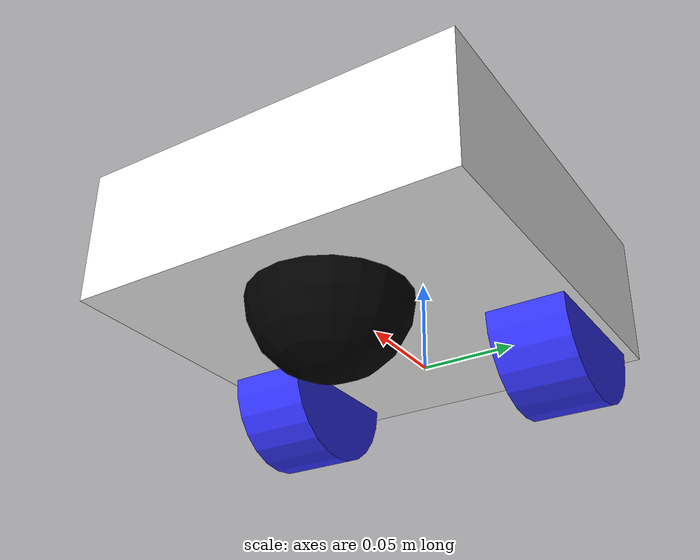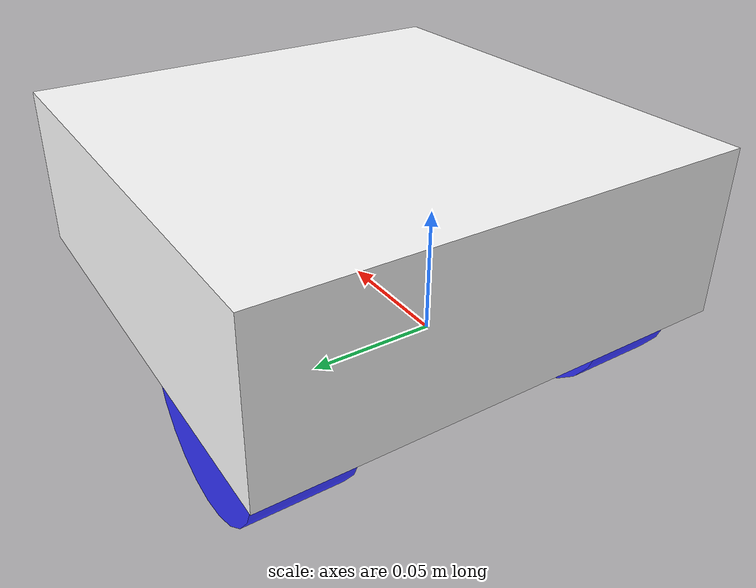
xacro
<?xml version="1.0"?>
<robot xmlns:xacro="http://www.ros.org/wiki/xacro">
    <xacro:include filename="inertial_macros.xacro" />
    <material name="white">
        <color rgba="1 1 1 1"/>
    </material>

    <material name="orange">
        <color rgba="1 0.3 0.1 1"/>
    </material>

    <material name="blue">
        <color rgba="0.2 0.2 1 1"/>
    </material>

    <material name="black">
        <color rgba="0 0 0 1"/>
    </material>
    <material name="red">
        <color rgba="1 0 0 1"/>
    </material>
    <!-- base_link definition -->
    <link name="base_link">
        <!-- This is an empty link; you can add visuals or collision properties here if needed -->
    </link>

    <!-- Chassis Link Definition -->
    <link name="chassis">
        <visual>
            <origin xyz="0.1 0 0.035" />
            <geometry>
                <box size="0.2 0.2 0.07"/>
            </geometry>
            <material name="white"/>
        </visual>
        <collision>
            <origin xyz="0.2 0 0.035" />
            <geometry>
                <box size="0.2 0.2 0.07"/>
            </geometry>
        </collision>
        <xacro:inertial_box mass="0.5" x="0.2" y="0.2" z="0.07">
            <origin xyz="0.15 0 0.075" rpy="0 0 0"/>
        </xacro:inertial_box>
    </link>
    <gazebo reference="chassis">
        <material>Gazebo/White</material>
    </gazebo>

    <!-- Fixed joint between base_link and chassis -->
    <joint name="chassis_joint" type="fixed">
        <parent link="base_link"/>
        <child link="chassis"/>
        <origin xyz="-0.05 0 0"/>
    </joint>

    <!-- left wheel-->>
    <!-- LEFT WHEEL -->

    <joint name="left_wheel_joint" type="continuous">
        <parent link="base_link"/>
        <child link="left_wheel"/>
        <origin xyz="0 0.075 0" rpy="-${pi/2} 0 0"/>
        <axis xyz="0 0 1"/>
    </joint>

    <link name="left_wheel">
        <visual>
            <geometry>
                <cylinder length="0.04" radius="0.04" />
            </geometry>
            <material name="blue"/>
        </visual>
        <collision>
            <geometry>
                <cylinder length="0.04" radius="0.04" />
            </geometry>
        </collision>
        <xacro:inertial_cylinder mass="0.1" length="0.04" radius="0.04">
            <origin xyz="0 0 0" rpy="0 0 0"/>
        </xacro:inertial_cylinder>
    </link>
    <gazebo reference="left_wheel">
        <material>Gazebo/Blue</material>
    </gazebo>
    <!-- right wheel-->
    <!-- RIGHT WHEEL -->

    <joint name="right_wheel_joint" type="continuous">
        <parent link="base_link"/>
        <child link="right_wheel"/>
        <origin xyz="0 -0.075 0" rpy="${pi/2} 0 0"/>
        <axis xyz="0 0 -1"/>
    </joint>

    <link name="right_wheel">
        <visual>
            <geometry>
                <cylinder length="0.04" radius="0.04" />
            </geometry>
            <material name="blue"/>
        </visual>
        <collision>
            <geometry>
                <cylinder length="0.04" radius="0.04" />
            </geometry>
        </collision>
        <xacro:inertial_cylinder mass="0.1" length="0.04" radius="0.04">
            <origin xyz="0 0 0" rpy="0 0 0"/>
        </xacro:inertial_cylinder>
    </link>
    <gazebo reference="right_wheel">
        <material>Gazebo/Blue</material>
    </gazebo>
    <!--caster-->
    <!-- CASTER WHEEL -->

    <joint name="caster_wheel_joint" type="fixed">
        <parent link="chassis"/>
        <child link="caster_wheel"/>
        <origin xyz="0.14 0 0" rpy="0 0 0"/>
    </joint>

    <link name="caster_wheel">
        <visual>
            <geometry>
                <sphere radius="0.04" />
            </geometry>
            <material name="black"/>
        </visual>
        <collision>
            <geometry>
                <sphere radius="0.04" />
            </geometry>
        </collision>
        <xacro:inertial_sphere mass="0.1" radius="0.04">
            <origin xyz="0 0 0" rpy="0 0 0"/>
        </xacro:inertial_sphere>
    </link>
    <gazebo reference="caster_wheel">
        <material>Gazebo/Black</material>
        <mu1 value="0.001"/>
        <mu2 value="0.001"/>
    </gazebo>

</robot>
